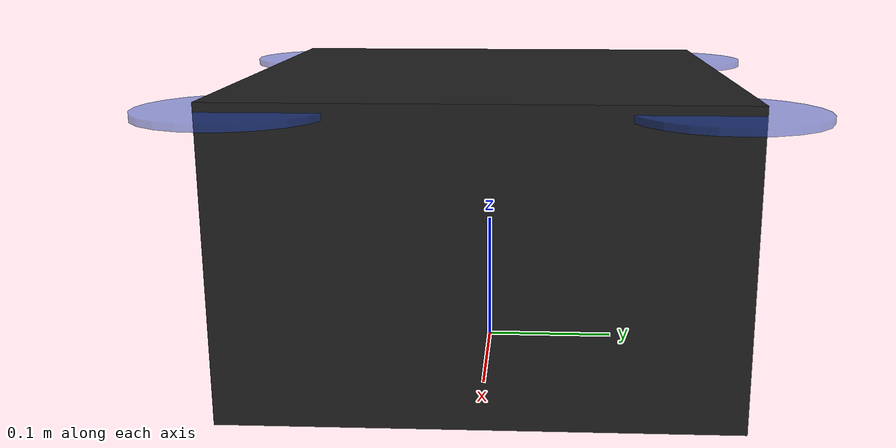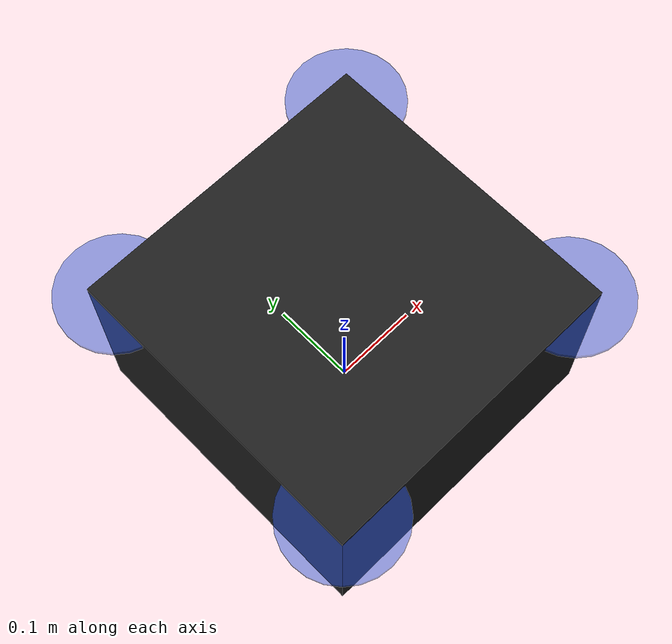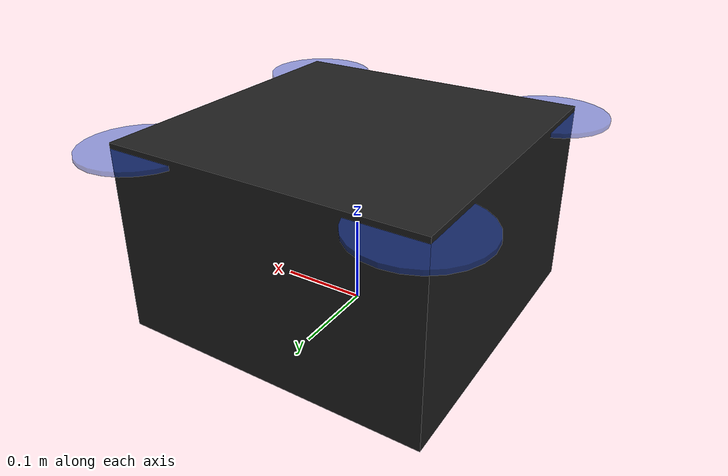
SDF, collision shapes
<?xml version="1.0" encoding="UTF-8"?>
<sdf version='1.9'>
  <model name='quad_f450_camera'>
    <include merge='true'>
      <uri>model://quad_f450_camera_base</uri>
    </include>
    <plugin filename="gz-sim-multicopter-motor-model-system"
      name="gz::sim::systems::MulticopterMotorModel">
      <jointName>rotor_0_joint</jointName>
      <linkName>rotor_0</linkName>
      <turningDirection>ccw</turningDirection>
      <timeConstantUp>0.0125</timeConstantUp>
      <timeConstantDown>0.025</timeConstantDown>
      <maxRotVelocity>900</maxRotVelocity>
      <motorConstant>1.28627e-05</motorConstant>
      <momentConstant>0.017</momentConstant>
      <commandSubTopic>command/motor_speed</commandSubTopic>
      <motorNumber>0</motorNumber>
      <rotorDragCoefficient>0.000806428</rotorDragCoefficient>
      <rollingMomentCoefficient>1e-06</rollingMomentCoefficient>
      <rotorVelocitySlowdownSim>10</rotorVelocitySlowdownSim>
      <motorType>velocity</motorType>
    </plugin>
     <plugin filename="gz-sim-multicopter-motor-model-system"
      name="gz::sim::systems::MulticopterMotorModel">
      <jointName>rotor_1_joint</jointName>
      <linkName>rotor_1</linkName>
      <turningDirection>ccw</turningDirection>
      <timeConstantUp>0.0125</timeConstantUp>
      <timeConstantDown>0.025</timeConstantDown>
      <maxRotVelocity>900</maxRotVelocity>
      <motorConstant>1.28627e-05</motorConstant>
      <momentConstant>0.017</momentConstant>
      <commandSubTopic>command/motor_speed</commandSubTopic>
      <motorNumber>1</motorNumber>
      <rotorDragCoefficient>0.000806428</rotorDragCoefficient>
      <rollingMomentCoefficient>1e-06</rollingMomentCoefficient>
      <rotorVelocitySlowdownSim>10</rotorVelocitySlowdownSim>
      <motorType>velocity</motorType>
    </plugin>
   <plugin filename="gz-sim-multicopter-motor-model-system"
      name="gz::sim::systems::MulticopterMotorModel">
      <jointName>rotor_2_joint</jointName>
      <linkName>rotor_2</linkName>
      <turningDirection>cw</turningDirection>
      <timeConstantUp>0.0125</timeConstantUp>
      <timeConstantDown>0.025</timeConstantDown>
      <maxRotVelocity>900</maxRotVelocity>
      <motorConstant>1.28627e-05</motorConstant>
      <momentConstant>0.017</momentConstant>
      <commandSubTopic>command/motor_speed</commandSubTopic>
      <motorNumber>2</motorNumber>
      <rotorDragCoefficient>0.000806428</rotorDragCoefficient>
      <rollingMomentCoefficient>1e-06</rollingMomentCoefficient>
      <rotorVelocitySlowdownSim>10</rotorVelocitySlowdownSim>
      <motorType>velocity</motorType>
    </plugin>
    <plugin filename="gz-sim-multicopter-motor-model-system"
      name="gz::sim::systems::MulticopterMotorModel">
      <jointName>rotor_3_joint</jointName>
      <linkName>rotor_3</linkName>
      <turningDirection>cw</turningDirection>
      <timeConstantUp>0.0125</timeConstantUp>
      <timeConstantDown>0.025</timeConstantDown>
      <maxRotVelocity>900</maxRotVelocity>
      <motorConstant>1.28627e-05</motorConstant>
      <momentConstant>0.017</momentConstant>
      <commandSubTopic>command/motor_speed</commandSubTopic>
      <motorNumber>3</motorNumber>
      <rotorDragCoefficient>0.000806428</rotorDragCoefficient>
      <rollingMomentCoefficient>1e-06</rollingMomentCoefficient>
      <rotorVelocitySlowdownSim>10</rotorVelocitySlowdownSim>
      <motorType>velocity</motorType>
    </plugin>
    <frame name='base_joint' attached_to='base_link'>
      <pose>0 0 0 0 0 0</pose>
    </frame>
    <frame name='base_link_inertia' attached_to='base_joint'>
      <pose>0 0 0 0 0 0</pose>
    </frame>
  </model>
</sdf>

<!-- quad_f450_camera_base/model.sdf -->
<sdf version='1.9'>
  <model name='quad_f450_camera_base'>
   <pose>0 0 0.1485 0 0 0</pose>
    <self_collide>false</self_collide>
    <static>false</static>
    <link name='base_link'>
      <inertial>
        <mass>1.6499999999999999</mass>
        <inertia>
          <ixx>0.014959</ixx>
          <ixy>0</ixy>
          <ixz>0</ixz>
          <iyy>0.022005</iyy>
          <iyz>0</iyz>
          <izz>0.028032999999999999</izz>
        </inertia>
      </inertial>
      <gravity>true</gravity>
      <velocity_decay />
      <collision name='base_link_inertia_collision'>
        <pose>0 0 -0.0385 0 0 0</pose>
        <geometry>
          <box>
            <size>0.35849999999999999 0.35849999999999999 0.22</size>
          </box>
        </geometry>
        <surface>
          <contact>
            <ode>
              <min_depth>0.001</min_depth>
              <max_vel>0</max_vel>
            </ode>
          </contact>
          <friction>
            <ode/>
          </friction>
        </surface>
      </collision>
      <visual name='base_link_inertia_visual'>
        <pose>0 0 0 0 0 0</pose>
        <geometry>
          <mesh>
            <scale>1 1 1</scale>
            <uri>model://quad_f450_camera_base/meshes/base_link.STL</uri>
          </mesh>
        </geometry>
        <material>
          <script>
            <name>Gazebo/Black</name>
            <uri>file://media/materials/scripts/gazebo.material</uri>
          </script>
        </material>
      </visual>
     <!-- Sensors -->
     <sensor name="air_pressure_sensor" type="air_pressure">
        <gz_frame_id>base_link</gz_frame_id>
        <always_on>1</always_on>
        <update_rate>50</update_rate>
        <air_pressure>
          <!-- Noise modeled after BMP390 -->
          <pressure>
            <noise type="gaussian">
              <mean>0</mean>
              <stddev>3</stddev>
            </noise>
          </pressure>
        </air_pressure>
      </sensor>
        <sensor name="magnetometer_sensor" type="magnetometer">
        <gz_frame_id>base_link</gz_frame_id>
        <always_on>1</always_on>
        <update_rate>100</update_rate>
        <magnetometer>
          <!-- TODO: update to fix units and coordinate system when we move past Harmonic -->
          <!-- See https://github.com/gazebosim/gz-sim/pull/2460 -->
          <!-- 3mgauss RMS: NOTE: noise is in tesla but sensor reports data in gauss -->
          <!-- Noise modeled after IIS2MDC -->
          <x>
            <noise type="gaussian">
              <stddev>0.0001</stddev>
            </noise>
          </x>
          <y>
            <noise type="gaussian">
              <stddev>0.0001</stddev>
            </noise>
          </y>
          <z>
            <noise type="gaussian">
              <stddev>0.0001</stddev>
            </noise>
          </z>
        </magnetometer>
         </sensor>
        <sensor name="imu_sensor" type="imu">
        <gz_frame_id>base_link</gz_frame_id>
        <always_on>1</always_on>
        <update_rate>250</update_rate>
        <imu>
          <angular_velocity>
            <!-- Noise modeled after IIM42653 -->
            <!-- 0.05 deg/s converted to rad/s -->
            <x>
              <noise type="gaussian">
                <mean>0.0</mean>
                <stddev>0.0008726646</stddev>
              </noise>
            </x>
            <y>
              <noise type="gaussian">
                <mean>0.0</mean>
                <stddev>0.0008726646</stddev>
              </noise>
            </y>
            <z>
              <noise type="gaussian">
                <mean>0.0</mean>
                <stddev>0.0008726646</stddev>
              </noise>
            </z>
          </angular_velocity>
          <linear_acceleration>
            <!-- Noise modeled after IIM42653 -->
            <!-- X & Y axis: 0.65 mg-rms converted to m/ss -->
            <x>
              <noise type="gaussian">
                <mean>0.0</mean>
                <stddev>0.00637</stddev>
              </noise>
            </x>
            <y>
              <noise type="gaussian">
                <mean>0.0</mean>
                <stddev>0.00637</stddev>
              </noise>
            </y>
            <!-- Z axis: 0.70 mg-rms converted to m/ss-->
            <z>
              <noise type="gaussian">
                <mean>0.0</mean>
                <stddev>0.00686</stddev>
              </noise>
            </z>
          </linear_acceleration>
        </imu>
        </sensor>
          <sensor name="navsat_sensor" type="navsat">
        <gz_frame_id>base_link</gz_frame_id>
        <always_on>1</always_on>
        <update_rate>30</update_rate>
      </sensor>
    </link>
    <joint name='rotor_0_joint' type='revolute'>
      <pose relative_to='base_link'>0.15890000000000001 -0.15909000000000001 0.062675999999999996 0 0 -0.7854000000000001</pose>
      <parent>base_link</parent>
      <child>rotor_0</child>
      <axis>
        <xyz>0 0 -1</xyz>
        <limit>
          <lower>-inf</lower>
          <upper>inf</upper>
        </limit>
        <dynamics>
          <spring_reference>0</spring_reference>
          <spring_stiffness>0</spring_stiffness>
        </dynamics>
      </axis>
    </joint>
    <link name='rotor_0'>
      <pose relative_to='rotor_0_joint'>0 0 0 0 0 0</pose>
      <inertial>
        <pose>0 0 0 0 0 0</pose>
        <mass>0.01</mass>
        <inertia>
          <ixx>8.5496000000000003e-07</ixx>
          <ixy>7.1953000000000004e-07</ixy>
          <ixz>-4.1012000000000002e-13</ixz>
          <iyy>6.2836000000000005e-07</iyy>
          <iyz>5.4909999999999995e-13</iyz>
          <izz>1.4789999999999999e-06</izz>
        </inertia>
      </inertial>
      <collision name='rotor_0_collision'>
        <pose>0 0 0 0 0 0</pose>
        <geometry>
          <cylinder>
            <length>0.0050000000000000001</length>
            <radius>0.065000000000000002</radius>
          </cylinder>
        </geometry>
        <surface>
          <contact>
            <ode/>
          </contact>
          <friction>
            <ode/>
          </friction>
        </surface>
      </collision>
      <visual name='rotor_0_visual'>
        <pose>0 0 0 0 0 0</pose>
        <geometry>
          <mesh>
            <scale>1 1 1</scale>
            <uri>model://quad_f450_camera_base/meshes/propeller_1.STL</uri>
          </mesh>
        </geometry>
        <material>
          <script>
            <name>Gazebo/BlueTransparent</name>
            <uri>file://media/materials/scripts/gazebo.material</uri>
          </script>
        </material>
      </visual>
    </link>
    <joint name='rotor_1_joint' type='revolute'>
      <pose relative_to='base_link'>-0.15890000000000001 0.15872 0.062675999999999996 0 0 -0.7854000000000001</pose>
      <parent>base_link</parent>
      <child>rotor_1</child>
      <axis>
        <xyz>0 0 -1</xyz>
        <limit>
          <lower>-inf</lower>
          <upper>inf</upper>
        </limit>
        <dynamics>
          <spring_reference>0</spring_reference>
          <spring_stiffness>0</spring_stiffness>
        </dynamics>
      </axis>
    </joint>
    <link name='rotor_1'>
      <pose relative_to='rotor_1_joint'>0 0 0 0 0 0</pose>
      <inertial>
        <pose>0 0 0 0 0 0</pose>
        <mass>0.01</mass>
        <inertia>
          <ixx>8.5496000000000003e-07</ixx>
          <ixy>7.1953000000000004e-07</ixy>
          <ixz>-4.1840000000000001e-13</ixz>
          <iyy>6.2836000000000005e-07</iyy>
          <iyz>5.3608999999999999e-13</iyz>
          <izz>1.4789999999999999e-06</izz>
        </inertia>
      </inertial>
      <collision name='rotor_1_collision'>
        <pose>0 0 0 0 0 0</pose>
        <geometry>
          <cylinder>
            <length>0.0050000000000000001</length>
            <radius>0.065000000000000002</radius>
          </cylinder>
        </geometry>
        <surface>
          <contact>
            <ode/>
          </contact>
          <friction>
            <ode/>
          </friction>
        </surface>
      </collision>
      <visual name='rotor_1_visual'>
        <pose>0 0 0 0 0 0</pose>
        <geometry>
          <mesh>
            <scale>1 1 1</scale>
            <uri>model://quad_f450_camera_base/meshes/propeller_1.STL</uri>
          </mesh>
        </geometry>
        <material>
          <script>
            <name>Gazebo/BlueTransparent</name>
            <uri>file://media/materials/scripts/gazebo.material</uri>
          </script>
        </material>
      </visual>
    </link>
    <joint name='rotor_2_joint' type='revolute'>
      <pose relative_to='base_link'>0.15891 0.15872 0.062675999999999996 0 0 0.7854000000000001</pose>
      <parent>base_link</parent>
      <child>rotor_2</child>
      <axis>
        <xyz>0 0 -1</xyz>
        <limit>
          <lower>-inf</lower>
          <upper>inf</upper>
        </limit>
        <dynamics>
          <spring_reference>0</spring_reference>
          <spring_stiffness>0</spring_stiffness>
        </dynamics>
      </axis>
    </joint>
    <link name='rotor_2'>
      <pose relative_to='rotor_2_joint'>0 0 0 0 0 0</pose>
      <inertial>
        <pose>0 0 0 0 0 0</pose>
        <mass>0.01</mass>
        <inertia>
          <ixx>8.4463999999999997e-07</ixx>
          <ixy>-7.2190999999999998e-07</ixy>
          <ixz>5.3515e-13</ixz>
          <iyy>6.4013999999999996e-07</iyy>
          <iyz>5.5137e-13</iyz>
          <izz>1.4805000000000001e-06</izz>
        </inertia>
      </inertial>
      <collision name='rotor_2_collision'>
        <pose>0 0 0 0 0 0</pose>
        <geometry>
          <cylinder>
            <length>0.0050000000000000001</length>
            <radius>0.065000000000000002</radius>
          </cylinder>
        </geometry>
        <surface>
          <contact>
            <ode/>
          </contact>
          <friction>
            <ode/>
          </friction>
        </surface>
      </collision>
      <visual name='rotor_2_visual'>
        <pose>0 0 0 0 0 0</pose>
        <geometry>
          <mesh>
            <scale>1 1 1</scale>
            <uri>model://quad_f450_camera_base/meshes/propeller_0.STL</uri>
          </mesh>
        </geometry>
        <material>
          <script>
            <name>Gazebo/BlueTransparent</name>
            <uri>file://media/materials/scripts/gazebo.material</uri>
          </script>
        </material>
      </visual>
    </link>
    <joint name='rotor_3_joint' type='revolute'>
      <pose relative_to='base_link'>-0.15891 -0.15909000000000001 0.062675999999999996 0 0 0.7854000000000001</pose>
      <parent>base_link</parent>
      <child>rotor_3</child>
      <axis>
        <xyz>0 0 -1</xyz>
        <limit>
          <lower>-inf</lower>
          <upper>inf</upper>
        </limit>
        <dynamics>
          <spring_reference>0</spring_reference>
          <spring_stiffness>0</spring_stiffness>
        </dynamics>
      </axis>
    </joint>
    <link name='rotor_3'>
      <pose relative_to='rotor_3_joint'>0 0 0 0 0 0</pose>
      <inertial>
        <pose>0 0 0 0 0 0</pose>
        <mass>0.01</mass>
        <inertia>
          <ixx>8.4463999999999997e-07</ixx>
          <ixy>-7.2190999999999998e-07</ixy>
          <ixz>4.5077000000000001e-13</ixz>
          <iyy>6.4013999999999996e-07</iyy>
          <iyz>4.5674000000000003e-13</iyz>
          <izz>1.4805000000000001e-06</izz>
        </inertia>
      </inertial>
      <collision name='rotor_3_collision'>
        <pose>0 0 0 0 0 0</pose>
        <geometry>
          <cylinder>
            <length>0.0050000000000000001</length>
            <radius>0.065000000000000002</radius>
          </cylinder>
        </geometry>
        <surface>
          <contact>
            <ode/>
          </contact>
          <friction>
            <ode/>
          </friction>
        </surface>
      </collision>
      <visual name='rotor_3_visual'>
        <pose>0 0 0 0 0 0</pose>
        <geometry>
          <mesh>
            <scale>1 1 1</scale>
            <uri>model://quad_f450_camera_base/meshes/propeller_0.STL</uri>
          </mesh>
        </geometry>
        <material>
          <script>
            <name>Gazebo/BlueTransparent</name>
            <uri>file://media/materials/scripts/gazebo.material</uri>
          </script>
        </material>
      </visual>
    </link>
  </model>
</sdf>
